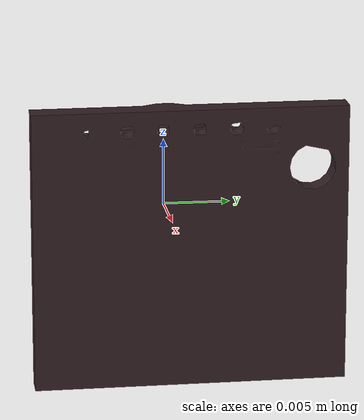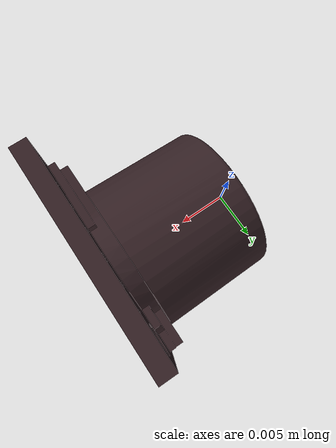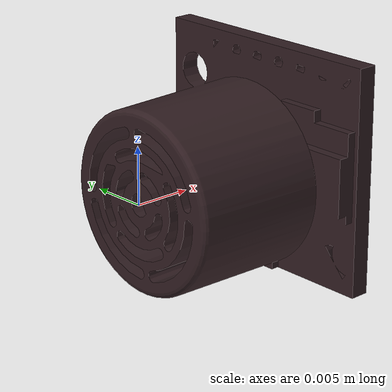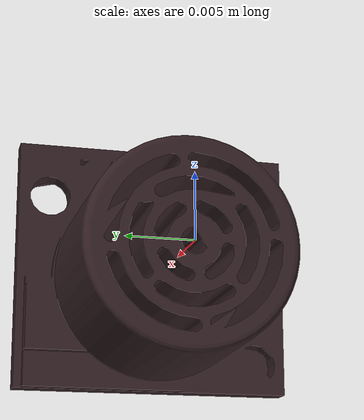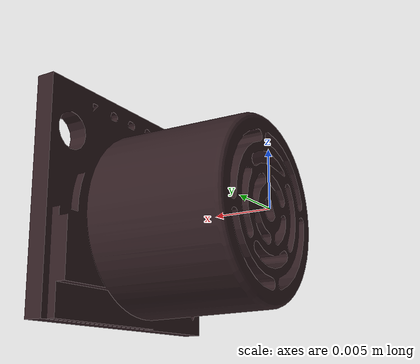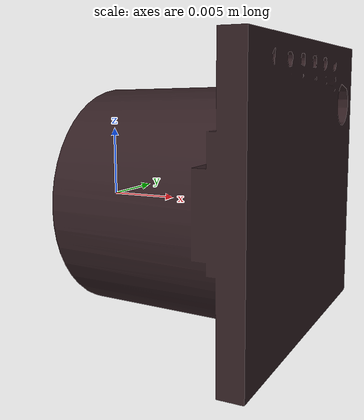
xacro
<robot name="Rear_URF_link"><link name="Rear_URF_link">
    <inertial>
      <origin rpy="0 0 0" xyz="0.012085 -1.486E-07 1.6494E-05" />
      <mass value="0.0020317" />
      <inertia ixx="9.8652E-08" ixy="-1.0309E-12" ixz="1.1443E-10" iyy="7.8496E-08" iyz="1.6171E-09" izz="8.4324E-08" />
    </inertial>
    <visual>
      <origin rpy="0 0 3.14" xyz="0 0 0" />
      <geometry>
        <mesh filename="package://robotican_description/lizi/meshes/Rear_URF_Link.STL" />
      </geometry>
      <material name="">
        <color rgba="0.19216 0.11961 0.13333 1" />
      </material>
    </visual>
    <collision>
      <origin rpy="0 0 0" xyz="0 0 0" />
      <geometry>
        <mesh filename="package://robotican_description/lizi/meshes/Rear_URF_Link.STL" />
      </geometry>
    </collision>
  </link>
  </robot>
